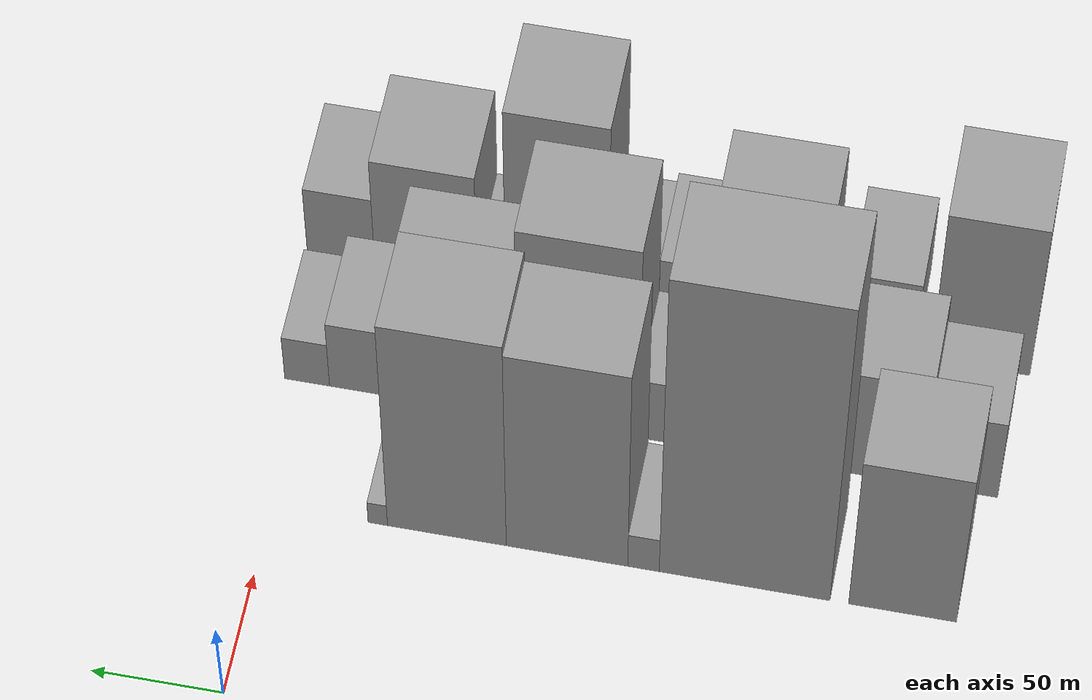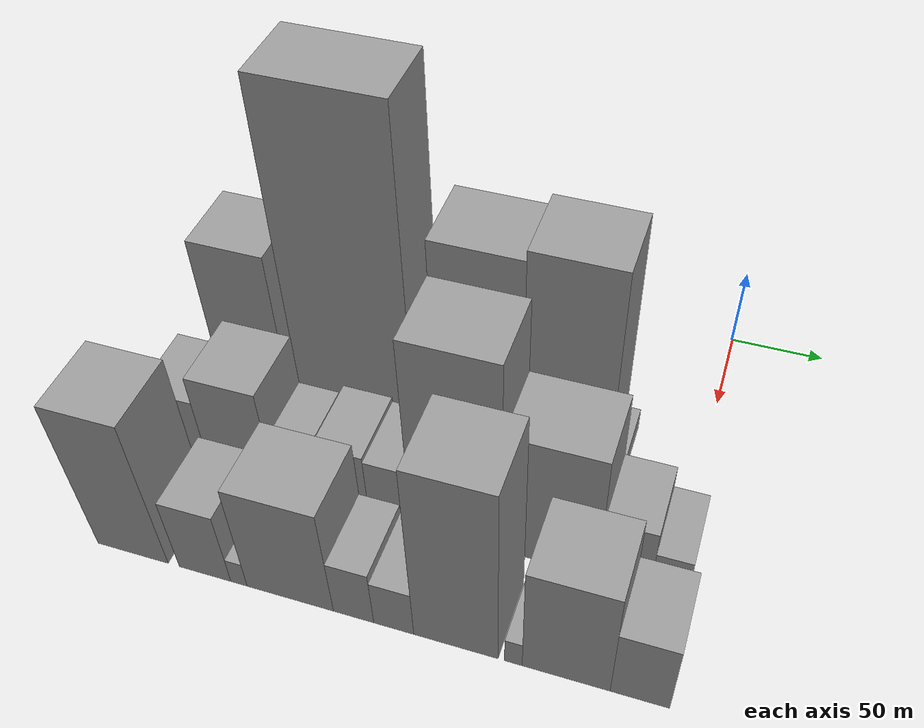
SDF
<sdf version="1.6">
 <world name="default">
  <model name="building_9">
   <static>1</static>
   <pose>100.0000 -239.2058 0 0.000000 0.000000 0.000000</pose>
   <link name="link">
    <pose>0 0 52.50 0 0 0</pose>
    <collision name="collision"><geometry><box><size>40.0000 40.3806 105.0000</size></box></geometry></collision>
    <visual name="visual">
     <cast_shadows>0</cast_shadows>
     <geometry><box><size>40.0000 40.3806 105.0000</size></box></geometry>
     <material>
      <script>
       <uri>model://grey_wall/materials/scripts</uri>
       <uri>model://grey_wall/materials/textures</uri>
       <name>vrc/grey_wall</name>
      </script>
     </material>
    </visual>
   </link>
  </model>
  <model name="building_10">
   <static>1</static>
   <pose>100.0000 -179.8316 0 0.000000 0.000000 0.000000</pose>
   <link name="link">
    <pose>0 0 103.50 0 0 0</pose>
    <collision name="collision"><geometry><box><size>40.0000 64.3677 207.0000</size></box></geometry></collision>
    <visual name="visual">
     <cast_shadows>0</cast_shadows>
     <geometry><box><size>40.0000 64.3677 207.0000</size></box></geometry>
     <material>
      <script>
       <uri>model://grey_wall/materials/scripts</uri>
       <uri>model://grey_wall/materials/textures</uri>
       <name>vrc/grey_wall</name>
      </script>
     </material>
    </visual>
   </link>
  </model>
  <model name="building_11">
   <static>1</static>
   <pose>100.0000 -141.6999 0 0.000000 0.000000 0.000000</pose>
   <link name="link">
    <pose>0 0 12.00 0 0 0</pose>
    <collision name="collision"><geometry><box><size>40.0000 11.8957 24.0000</size></box></geometry></collision>
    <visual name="visual">
     <cast_shadows>0</cast_shadows>
     <geometry><box><size>40.0000 11.8957 24.0000</size></box></geometry>
     <material>
      <script>
       <uri>model://grey_wall/materials/scripts</uri>
       <uri>model://grey_wall/materials/textures</uri>
       <name>vrc/grey_wall</name>
      </script>
     </material>
    </visual>
   </link>
  </model>
  <model name="building_12">
   <static>1</static>
   <pose>100.0000 -112.7163 0 0.000000 0.000000 0.000000</pose>
   <link name="link">
    <pose>0 0 69.00 0 0 0</pose>
    <collision name="collision"><geometry><box><size>40.0000 46.0715 138.0000</size></box></geometry></collision>
    <visual name="visual">
     <cast_shadows>0</cast_shadows>
     <geometry><box><size>40.0000 46.0715 138.0000</size></box></geometry>
     <material>
      <script>
       <uri>model://grey_wall/materials/scripts</uri>
       <uri>model://grey_wall/materials/textures</uri>
       <name>vrc/grey_wall</name>
      </script>
     </material>
    </visual>
   </link>
  </model>
  <model name="building_13">
   <static>1</static>
   <pose>100.0000 -67.0295 0 0.000000 0.000000 0.000000</pose>
   <link name="link">
    <pose>0 0 72.00 0 0 0</pose>
    <collision name="collision"><geometry><box><size>40.0000 45.3021 144.0000</size></box></geometry></collision>
    <visual name="visual">
     <cast_shadows>0</cast_shadows>
     <geometry><box><size>40.0000 45.3021 144.0000</size></box></geometry>
     <material>
      <script>
       <uri>model://grey_wall/materials/scripts</uri>
       <uri>model://grey_wall/materials/textures</uri>
       <name>vrc/grey_wall</name>
      </script>
     </material>
    </visual>
   </link>
  </model>
  <model name="building_14">
   <static>1</static>
   <pose>100.0000 -40.6850 0 0.000000 0.000000 0.000000</pose>
   <link name="link">
    <pose>0 0 7.50 0 0 0</pose>
    <collision name="collision"><geometry><box><size>40.0000 7.3868 15.0000</size></box></geometry></collision>
    <visual name="visual">
     <cast_shadows>0</cast_shadows>
     <geometry><box><size>40.0000 7.3868 15.0000</size></box></geometry>
     <material>
      <script>
       <uri>model://grey_wall/materials/scripts</uri>
       <uri>model://grey_wall/materials/textures</uri>
       <name>vrc/grey_wall</name>
      </script>
     </material>
    </visual>
   </link>
  </model>
  <model name="building_43">
   <static>1</static>
   <pose>155.0000 -252.5107 0 0.000000 0.000000 0.000000</pose>
   <link name="link">
    <pose>0 0 27.00 0 0 0</pose>
    <collision name="collision"><geometry><box><size>40.0000 28.3674 54.0000</size></box></geometry></collision>
    <visual name="visual">
     <cast_shadows>0</cast_shadows>
     <geometry><box><size>40.0000 28.3674 54.0000</size></box></geometry>
     <material>
      <script>
       <uri>model://grey_wall/materials/scripts</uri>
       <uri>model://grey_wall/materials/textures</uri>
       <name>vrc/grey_wall</name>
      </script>
     </material>
    </visual>
   </link>
  </model>
  <model name="building_44">
   <static>1</static>
   <pose>155.0000 -220.3264 0 0.000000 0.000000 0.000000</pose>
   <link name="link">
    <pose>0 0 36.00 0 0 0</pose>
    <collision name="collision"><geometry><box><size>40.0000 36.0011 72.0000</size></box></geometry></collision>
    <visual name="visual">
     <cast_shadows>0</cast_shadows>
     <geometry><box><size>40.0000 36.0011 72.0000</size></box></geometry>
     <material>
      <script>
       <uri>model://grey_wall/materials/scripts</uri>
       <uri>model://grey_wall/materials/textures</uri>
       <name>vrc/grey_wall</name>
      </script>
     </material>
    </visual>
   </link>
  </model>
  <model name="building_45">
   <static>1</static>
   <pose>155.0000 -191.4510 0 0.000000 0.000000 0.000000</pose>
   <link name="link">
    <pose>0 0 19.50 0 0 0</pose>
    <collision name="collision"><geometry><box><size>40.0000 21.7497 39.0000</size></box></geometry></collision>
    <visual name="visual">
     <cast_shadows>0</cast_shadows>
     <geometry><box><size>40.0000 21.7497 39.0000</size></box></geometry>
     <material>
      <script>
       <uri>model://grey_wall/materials/scripts</uri>
       <uri>model://grey_wall/materials/textures</uri>
       <name>vrc/grey_wall</name>
      </script>
     </material>
    </visual>
   </link>
  </model>
  <model name="building_46">
   <static>1</static>
   <pose>155.0000 -164.6958 0 0.000000 0.000000 0.000000</pose>
   <link name="link">
    <pose>0 0 22.50 0 0 0</pose>
    <collision name="collision"><geometry><box><size>40.0000 25.7607 45.0000</size></box></geometry></collision>
    <visual name="visual">
     <cast_shadows>0</cast_shadows>
     <geometry><box><size>40.0000 25.7607 45.0000</size></box></geometry>
     <material>
      <script>
       <uri>model://grey_wall/materials/scripts</uri>
       <uri>model://grey_wall/materials/textures</uri>
       <name>vrc/grey_wall</name>
      </script>
     </material>
    </visual>
   </link>
  </model>
  <model name="building_47">
   <static>1</static>
   <pose>155.0000 -140.7426 0 0.000000 0.000000 0.000000</pose>
   <link name="link">
    <pose>0 0 21.00 0 0 0</pose>
    <collision name="collision"><geometry><box><size>40.0000 22.1457 42.0000</size></box></geometry></collision>
    <visual name="visual">
     <cast_shadows>0</cast_shadows>
     <geometry><box><size>40.0000 22.1457 42.0000</size></box></geometry>
     <material>
      <script>
       <uri>model://grey_wall/materials/scripts</uri>
       <uri>model://grey_wall/materials/textures</uri>
       <name>vrc/grey_wall</name>
      </script>
     </material>
    </visual>
   </link>
  </model>
  <model name="building_48">
   <static>1</static>
   <pose>155.0000 -106.2939 0 0.000000 0.000000 0.000000</pose>
   <link name="link">
    <pose>0 0 66.00 0 0 0</pose>
    <collision name="collision"><geometry><box><size>40.0000 46.7518 132.0000</size></box></geometry></collision>
    <visual name="visual">
     <cast_shadows>0</cast_shadows>
     <geometry><box><size>40.0000 46.7518 132.0000</size></box></geometry>
     <material>
      <script>
       <uri>model://grey_wall/materials/scripts</uri>
       <uri>model://grey_wall/materials/textures</uri>
       <name>vrc/grey_wall</name>
      </script>
     </material>
    </visual>
   </link>
  </model>
  <model name="building_49">
   <static>1</static>
   <pose>155.0000 -59.1420 0 0.000000 0.000000 0.000000</pose>
   <link name="link">
    <pose>0 0 43.50 0 0 0</pose>
    <collision name="collision"><geometry><box><size>40.0000 47.5520 87.0000</size></box></geometry></collision>
    <visual name="visual">
     <cast_shadows>0</cast_shadows>
     <geometry><box><size>40.0000 47.5520 87.0000</size></box></geometry>
     <material>
      <script>
       <uri>model://grey_wall/materials/scripts</uri>
       <uri>model://grey_wall/materials/textures</uri>
       <name>vrc/grey_wall</name>
      </script>
     </material>
    </visual>
   </link>
  </model>
  <model name="building_50">
   <static>1</static>
   <pose>155.0000 -22.7930 0 0.000000 0.000000 0.000000</pose>
   <link name="link">
    <pose>0 0 22.50 0 0 0</pose>
    <collision name="collision"><geometry><box><size>40.0000 25.1459 45.0000</size></box></geometry></collision>
    <visual name="visual">
     <cast_shadows>0</cast_shadows>
     <geometry><box><size>40.0000 25.1459 45.0000</size></box></geometry>
     <material>
      <script>
       <uri>model://grey_wall/materials/scripts</uri>
       <uri>model://grey_wall/materials/textures</uri>
       <name>vrc/grey_wall</name>
      </script>
     </material>
    </visual>
   </link>
  </model>
  <model name="building_51">
   <static>1</static>
   <pose>155.0000 -1.5089 0 0.000000 0.000000 0.000000</pose>
   <link name="link">
    <pose>0 0 15.00 0 0 0</pose>
    <collision name="collision"><geometry><box><size>40.0000 17.4223 30.0000</size></box></geometry></collision>
    <visual name="visual">
     <cast_shadows>0</cast_shadows>
     <geometry><box><size>40.0000 17.4223 30.0000</size></box></geometry>
     <material>
      <script>
       <uri>model://grey_wall/materials/scripts</uri>
       <uri>model://grey_wall/materials/textures</uri>
       <name>vrc/grey_wall</name>
      </script>
     </material>
    </visual>
   </link>
  </model>
  <model name="building_74">
   <static>1</static>
   <pose>210.0000 -252.0062 0 0.000000 0.000000 0.000000</pose>
   <link name="link">
    <pose>0 0 51.00 0 0 0</pose>
    <collision name="collision"><geometry><box><size>40.0000 38.0598 102.0000</size></box></geometry></collision>
    <visual name="visual">
     <cast_shadows>0</cast_shadows>
     <geometry><box><size>40.0000 38.0598 102.0000</size></box></geometry>
     <material>
      <script>
       <uri>model://grey_wall/materials/scripts</uri>
       <uri>model://grey_wall/materials/textures</uri>
       <name>vrc/grey_wall</name>
      </script>
     </material>
    </visual>
   </link>
  </model>
  <model name="building_75">
   <static>1</static>
   <pose>210.0000 -213.4024 0 0.000000 0.000000 0.000000</pose>
   <link name="link">
    <pose>0 0 25.50 0 0 0</pose>
    <collision name="collision"><geometry><box><size>40.0000 27.1479 51.0000</size></box></geometry></collision>
    <visual name="visual">
     <cast_shadows>0</cast_shadows>
     <geometry><box><size>40.0000 27.1479 51.0000</size></box></geometry>
     <material>
      <script>
       <uri>model://grey_wall/materials/scripts</uri>
       <uri>model://grey_wall/materials/textures</uri>
       <name>vrc/grey_wall</name>
      </script>
     </material>
    </visual>
   </link>
  </model>
  <model name="building_76">
   <static>1</static>
   <pose>210.0000 -195.6108 0 0.000000 0.000000 0.000000</pose>
   <link name="link">
    <pose>0 0 9.00 0 0 0</pose>
    <collision name="collision"><geometry><box><size>40.0000 8.4352 18.0000</size></box></geometry></collision>
    <visual name="visual">
     <cast_shadows>0</cast_shadows>
     <geometry><box><size>40.0000 8.4352 18.0000</size></box></geometry>
     <material>
      <script>
       <uri>model://grey_wall/materials/scripts</uri>
       <uri>model://grey_wall/materials/textures</uri>
       <name>vrc/grey_wall</name>
      </script>
     </material>
    </visual>
   </link>
  </model>
  <model name="building_77">
   <static>1</static>
   <pose>210.0000 -169.4008 0 0.000000 0.000000 0.000000</pose>
   <link name="link">
    <pose>0 0 37.50 0 0 0</pose>
    <collision name="collision"><geometry><box><size>40.0000 43.9848 75.0000</size></box></geometry></collision>
    <visual name="visual">
     <cast_shadows>0</cast_shadows>
     <geometry><box><size>40.0000 43.9848 75.0000</size></box></geometry>
     <material>
      <script>
       <uri>model://grey_wall/materials/scripts</uri>
       <uri>model://grey_wall/materials/textures</uri>
       <name>vrc/grey_wall</name>
      </script>
     </material>
    </visual>
   </link>
  </model>
  <model name="building_78">
   <static>1</static>
   <pose>210.0000 -137.3913 0 0.000000 0.000000 0.000000</pose>
   <link name="link">
    <pose>0 0 19.50 0 0 0</pose>
    <collision name="collision"><geometry><box><size>40.0000 20.0341 39.0000</size></box></geometry></collision>
    <visual name="visual">
     <cast_shadows>0</cast_shadows>
     <geometry><box><size>40.0000 20.0341 39.0000</size></box></geometry>
     <material>
      <script>
       <uri>model://grey_wall/materials/scripts</uri>
       <uri>model://grey_wall/materials/textures</uri>
       <name>vrc/grey_wall</name>
      </script>
     </material>
    </visual>
   </link>
  </model>
  <model name="building_79">
   <static>1</static>
   <pose>210.0000 -117.5936 0 0.000000 0.000000 0.000000</pose>
   <link name="link">
    <pose>0 0 16.50 0 0 0</pose>
    <collision name="collision"><geometry><box><size>40.0000 19.5613 33.0000</size></box></geometry></collision>
    <visual name="visual">
     <cast_shadows>0</cast_shadows>
     <geometry><box><size>40.0000 19.5613 33.0000</size></box></geometry>
     <material>
      <script>
       <uri>model://grey_wall/materials/scripts</uri>
       <uri>model://grey_wall/materials/textures</uri>
       <name>vrc/grey_wall</name>
      </script>
     </material>
    </visual>
   </link>
  </model>
  <model name="building_80">
   <static>1</static>
   <pose>210.0000 -87.6925 0 0.000000 0.000000 0.000000</pose>
   <link name="link">
    <pose>0 0 61.50 0 0 0</pose>
    <collision name="collision"><geometry><box><size>40.0000 40.2410 123.0000</size></box></geometry></collision>
    <visual name="visual">
     <cast_shadows>0</cast_shadows>
     <geometry><box><size>40.0000 40.2410 123.0000</size></box></geometry>
     <material>
      <script>
       <uri>model://grey_wall/materials/scripts</uri>
       <uri>model://grey_wall/materials/textures</uri>
       <name>vrc/grey_wall</name>
      </script>
     </material>
    </visual>
   </link>
  </model>
  <model name="building_81">
   <static>1</static>
   <pose>210.0000 -60.4751 0 0.000000 0.000000 0.000000</pose>
   <link name="link">
    <pose>0 0 9.00 0 0 0</pose>
    <collision name="collision"><geometry><box><size>40.0000 8.1938 18.0000</size></box></geometry></collision>
    <visual name="visual">
     <cast_shadows>0</cast_shadows>
     <geometry><box><size>40.0000 8.1938 18.0000</size></box></geometry>
     <material>
      <script>
       <uri>model://grey_wall/materials/scripts</uri>
       <uri>model://grey_wall/materials/textures</uri>
       <name>vrc/grey_wall</name>
      </script>
     </material>
    </visual>
   </link>
  </model>
  <model name="building_82">
   <static>1</static>
   <pose>210.0000 -36.2464 0 0.000000 0.000000 0.000000</pose>
   <link name="link">
    <pose>0 0 37.50 0 0 0</pose>
    <collision name="collision"><geometry><box><size>40.0000 40.2636 75.0000</size></box></geometry></collision>
    <visual name="visual">
     <cast_shadows>0</cast_shadows>
     <geometry><box><size>40.0000 40.2636 75.0000</size></box></geometry>
     <material>
      <script>
       <uri>model://grey_wall/materials/scripts</uri>
       <uri>model://grey_wall/materials/textures</uri>
       <name>vrc/grey_wall</name>
      </script>
     </material>
    </visual>
   </link>
  </model>
  <model name="building_83">
   <static>1</static>
   <pose>210.0000 -2.8504 0 0.000000 0.000000 0.000000</pose>
   <link name="link">
    <pose>0 0 24.00 0 0 0</pose>
    <collision name="collision"><geometry><box><size>40.0000 26.5285 48.0000</size></box></geometry></collision>
    <visual name="visual">
     <cast_shadows>0</cast_shadows>
     <geometry><box><size>40.0000 26.5285 48.0000</size></box></geometry>
     <material>
      <script>
       <uri>model://grey_wall/materials/scripts</uri>
       <uri>model://grey_wall/materials/textures</uri>
       <name>vrc/grey_wall</name>
      </script>
     </material>
    </visual>
   </link>
  </model>
 </world>
</sdf>
